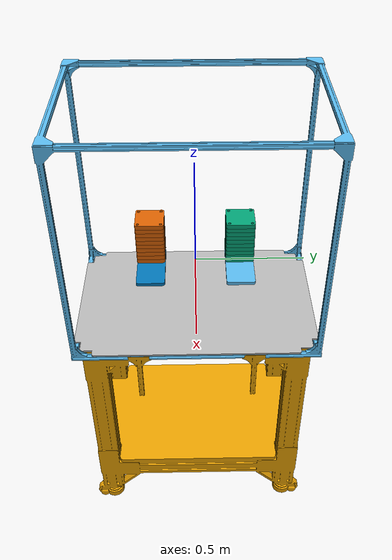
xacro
<?xml version="1.0"?>
<robot xmlns:xacro="http://wiki.ros.org/xacro" name="homecart_bimanual">
  <!-- The Left UR3e robot's ur_base_link is joined to left_arm_base_link -->
  <!-- The Right UR3e robot's ur_base_link is joined to
       right_arm_base_link -->
  <link name="homecart_base_link"/>
  <xacro:property name="arm_mount_cantilever_length" value="0.254"/>
  <xacro:property name="arm_mount_cantilever_height" value="0.015"/>
  <xacro:property name="arm_mount_stack_plate_side" value="0.1275"/>
  <xacro:property name="arm_mount_stack_plate_height" value="0.02"/>
  <xacro:macro name="arm_mount_xacro"
               params="side num_plates *arm_mount_origin">
    <!-- Private, recursive macro to stack visual plate meshes.
         Arguments include "num_plate": the number of plates to stack -->
    <xacro:macro name="arm_mount_visual_plates_xacro"
                params="num_plates">
      <visual>
        <origin xyz="0 0 ${(num_plates-1)*arm_mount_stack_plate_height}"
                rpy="0 0 0"/>
        <geometry>
          <mesh filename="package://drake_models/tri_homecart/assets/homecart_arm_mount_stack.gltf"/>
        </geometry>
      </visual>
      <xacro:if value="${num_plates>1}">
        <xacro:arm_mount_visual_plates_xacro num_plates="${num_plates-1}"/>
      </xacro:if>
    </xacro:macro>
    <link name="${side}arm_mount_cantilever_link">
      <visual>
        <origin xyz="0 0 0.0" rpy="0 0 0"/>
        <geometry>
          <mesh filename="package://drake_models/tri_homecart/assets/homecart_arm_mount_cantilever.gltf"/>
        </geometry>
      </visual>
      <collision>
        <origin xyz="${arm_mount_cantilever_length/4}
                     0
                     ${arm_mount_cantilever_height/2.0}"
                rpy="0 0 0"/>
        <geometry>
          <box size="${arm_mount_cantilever_length}
                     ${arm_mount_stack_plate_side}
                     ${arm_mount_cantilever_height}"/>
        </geometry>
      </collision>
      <inertial>
        <!-- TODO(imcmahon) add valid mass and inertial properties here -->
        <mass value="1.0"/>
        <inertia ixx="100" ixy="0" ixz="0" iyy="100" iyz="0" izz="100"/>
      </inertial>
    </link>
    <joint name="${side}arm_mount_cantilever_joint" type="fixed">
      <xacro:insert_block name="arm_mount_origin"/>
      <parent link="homecart_base_link"/>
      <child link="${side}arm_mount_cantilever_link"/>
    </joint>
    <link name="${side}arm_mount_stack_link">
      <xacro:arm_mount_visual_plates_xacro num_plates="${num_plates}"/>
        <collision>
        <origin xyz="0 0 ${(num_plates*arm_mount_stack_plate_height)/2.0}"
                rpy="0 0 0"/>
        <geometry>
          <box size="${arm_mount_stack_plate_side}
                     ${arm_mount_stack_plate_side}
                     ${num_plates*arm_mount_stack_plate_height}"/>
        </geometry>
      </collision>
      <inertial>
        <!-- TODO(imcmahon) add valid mass and inertial properties here -->
        <mass value="1.0"/>
        <inertia ixx="100" ixy="0" ixz="0" iyy="100" iyz="0" izz="100"/>
      </inertial>
    </link>
    <joint name="${side}arm_mount_stack_joint" type="fixed">
      <origin xyz="0 0 ${arm_mount_cantilever_height}" rpy="0 0 0"/>
      <parent link="${side}arm_mount_cantilever_link"/>
      <child link="${side}arm_mount_stack_link"/>
    </joint>
    <link name="${side}arm_base_link"/>
    <joint name="${side}arm_base_joint" type="fixed">
      <origin xyz="0 0 ${num_plates*0.02}" rpy="0 0 0"/>
      <parent link="${side}arm_mount_stack_link"/>
      <child link="${side}arm_base_link"/>
    </joint>
  </xacro:macro>

  <xacro:property name="arm_mount_pin_delta" value="0.02"/>
  <!-- Valid pin locations (center outward): 0, 1, 2, 3, 4, 5 -->
  <xacro:property name="arm_mount_pin_location" value="5"/>
  <!-- Valid stack values: [0, 10] -->
  <xacro:property name="num_plates" value="10"/>
  <xacro:property name="homecart_base_link_center_x_offset" value="0.2775"/>
  <xacro:property name="homecart_base_link_arm_y_offset" value="0.1"/>
  <xacro:arm_mount_xacro side="left_" num_plates="${num_plates}">
      <origin xyz="0
                   ${homecart_base_link_arm_y_offset+
                     (arm_mount_pin_location*arm_mount_pin_delta)}
                   0"
              rpy="0 0 0"/>
  </xacro:arm_mount_xacro>
  <xacro:arm_mount_xacro side="right_" num_plates="${num_plates}">
      <origin xyz="0
                   ${-homecart_base_link_arm_y_offset-
                     (arm_mount_pin_location*arm_mount_pin_delta)}
                   0"
              rpy="0 0 0"/>
  </xacro:arm_mount_xacro>
  <xacro:property name="homecart_baseplate_width" value="0.6816"/>
  <xacro:property name="homecart_baseplate_length" value="0.9864"/>
  <xacro:property name="homecart_baseplate_height" value="0.0065"/>
  <joint name="homecart_base_link" type="fixed">
    <origin xyz="${homecart_base_link_center_x_offset} 0 0" rpy="0 0 0"/>
    <parent link="homecart_base_link"/>
    <child link="homecart_baseplate_link"/>
  </joint>
  <link name="homecart_baseplate_link">
    <visual>
      <origin xyz="0 0 0.0" rpy="0 0 0"/>
      <geometry>
        <mesh filename="package://drake_models/tri_homecart/assets/homecart_baseplate.gltf"/>
      </geometry>
    </visual>
    <collision>
      <origin xyz="0 0 ${-homecart_baseplate_height/2.0}"
              rpy="0 0 0"/>
      <geometry>
        <box size="${homecart_baseplate_width}
                   ${homecart_baseplate_length}
                   ${homecart_baseplate_height}"/>
      </geometry>
    </collision>
    <inertial>
      <!-- TODO(imcmahon) add valid mass and inertial properties here -->
      <mass value="1.0"/>
      <inertia ixx="100" ixy="0" ixz="0" iyy="100" iyz="0" izz="100"/>
    </inertial>
  </link>
  <xacro:property name="homecart_cart_length" value="0.93"/>
  <xacro:property name="homecart_cart_width" value="0.62"/>
  <xacro:property name="homecart_cart_height" value="1.0275"/>
  <link name="homecart_cart_link">
    <visual>
      <origin xyz="0 0 0.0" rpy="0 0 0"/>
      <geometry>
        <mesh filename="package://drake_models/tri_homecart/assets/homecart_basecart.gltf"/>
      </geometry>
    </visual>
    <collision>
      <!-- The collision shape geometry is specified with respect to its
           geometric center, from the visual origin -->
      <origin xyz="0 0 ${-homecart_cart_height/2.0}" rpy="0 0 0"/>
      <geometry>
        <box size="${homecart_cart_width}
                   ${homecart_cart_length}
                   ${homecart_cart_height}"/>
      </geometry>
    </collision>
    <inertial>
      <!-- TODO(imcmahon) add valid mass and inertial properties here -->
      <mass value="1.0"/>
      <inertia ixx="100" ixy="0" ixz="0" iyy="100" iyz="0" izz="100"/>
    </inertial>
  </link>
  <joint name="homecart_cart_joint" type="fixed">
    <origin xyz="0 0 ${-homecart_baseplate_height}" rpy="0 0 0"/>
    <parent link="homecart_baseplate_link"/>
    <child link="homecart_cart_link"/>
  </joint>
  <xacro:property name="upper_structure_height" value="0.937"/>
  <xacro:property name="upper_structure_length" value="0.9864"/>
  <xacro:property name="upper_structure_width" value="0.6816"/>
  <xacro:property name="upper_structure_beam_side" value="0.023"/>
  <xacro:property name="upper_structure_angle_bracket_radius" value="0.054"/>
  <xacro:property name="base_plate_thickness" value="0.0065"/>
  <xacro:property name="upper_structure_lower_z_origin"
    value="${-upper_structure_height+
             upper_structure_beam_side-
             base_plate_thickness}"/>
  <link name="homecart_upper_structure_link">
    <inertial>
      <!-- TODO(imcmahon) add valid mass and inertial properties here -->
      <mass value="1.0"/>
      <inertia ixx="100" ixy="0" ixz="0" iyy="100" iyz="0" izz="100"/>
    </inertial>
    <visual>
    <origin xyz="0 0 0" rpy="0 0 0"/>
      <geometry>
        <mesh filename="package://drake_models/tri_homecart/assets/homecart_bimanual_upper_structure.gltf"/>
      </geometry>
    </visual>

    <!-- upper angle collision spheres -->
    <collision>
      <origin xyz="${upper_structure_beam_side/2.0}
                   ${upper_structure_beam_side/2.0}
                   ${-upper_structure_beam_side/2.0}"
              rpy="0 0 0"/>
      <geometry>
        <sphere radius="${upper_structure_angle_bracket_radius}"/>
      </geometry>
    </collision>
    <collision>
      <origin xyz="${upper_structure_length-upper_structure_beam_side/2.0}
                   ${upper_structure_beam_side/2.0}
                   ${-upper_structure_beam_side/2.0}"
              rpy="0 0 0"/>
      <geometry>
        <sphere radius="${upper_structure_angle_bracket_radius}"/>
      </geometry>
    </collision>
    <collision>
      <origin xyz="${upper_structure_length-upper_structure_beam_side/2.0}
                   ${upper_structure_width-upper_structure_beam_side/2.0}
                   ${-upper_structure_beam_side/2.0}"
              rpy="0 0 0"/>
      <geometry>
        <sphere radius="${upper_structure_angle_bracket_radius}"/>
      </geometry>
    </collision>
    <collision>
      <origin xyz="${upper_structure_beam_side/2.0}
                   ${upper_structure_width-upper_structure_beam_side/2.0}
                   ${-upper_structure_beam_side/2.0}"
              rpy="0 0 0"/>
      <geometry>
        <sphere radius="${upper_structure_angle_bracket_radius}"/>
      </geometry>
    </collision>
    <!-- lower angle collision spheres -->
    <collision>
      <origin xyz="${upper_structure_length-upper_structure_beam_side/2.0}
                   ${upper_structure_width-upper_structure_beam_side/2.0}
                   ${upper_structure_lower_z_origin}"
              rpy="0 0 0"/>
      <geometry>
        <sphere radius="${upper_structure_angle_bracket_radius}"/>
      </geometry>
    </collision>
    <collision>
      <origin xyz="${upper_structure_length-upper_structure_beam_side/2.0}
                   ${upper_structure_beam_side/2.0}
                   ${upper_structure_lower_z_origin}"
              rpy="0 0 0"/>
      <geometry>
        <sphere radius="${upper_structure_angle_bracket_radius}"/>
      </geometry>
    </collision>
    <collision>
      <origin xyz="${upper_structure_beam_side/2.0}
                   ${upper_structure_width-upper_structure_beam_side/2.0}
                   ${upper_structure_lower_z_origin}"
              rpy="0 0 0"/>
      <geometry>
        <sphere radius="${upper_structure_angle_bracket_radius}"/>
      </geometry>
    </collision>
    <collision>
      <origin xyz="${upper_structure_beam_side/2.0}
                   ${upper_structure_beam_side/2.0}
                   ${upper_structure_lower_z_origin}"
              rpy="0 0 0"/>
      <geometry>
        <sphere radius="${upper_structure_angle_bracket_radius}"/>
      </geometry>
    </collision>
    <!-- Macro for building horizontal, square collision bars.
         Arguments include "z_origin": the mounting point along the
                                       parent frame's Z axis -->
    <xacro:macro name="upper_structure_horizontal_collision_bars"
                 params="z_origin">
      <collision>
        <origin xyz="${upper_structure_length/2.0}
                     ${upper_structure_beam_side/2.0}
                     ${z_origin}"
                rpy="0 0 0"/>
        <geometry>
          <box size="${upper_structure_length}
                     ${upper_structure_beam_side}
                     ${upper_structure_beam_side}"/>
        </geometry>
      </collision>
      <collision>
        <origin xyz="${upper_structure_beam_side/2.0}
                     ${upper_structure_width/2.0}
                     ${z_origin}"
                rpy="0 0 0"/>
        <geometry>
          <box size="${upper_structure_beam_side}
                     ${upper_structure_width}
                     ${upper_structure_beam_side}"/>
        </geometry>
      </collision>
      <collision>
        <origin xyz="${upper_structure_length/2.0}
                     ${upper_structure_width-upper_structure_beam_side/2.0}
                     ${z_origin}"
                rpy="0 0 0"/>
        <geometry>
          <box size="${upper_structure_length}
                     ${upper_structure_beam_side}
                     ${upper_structure_beam_side}"/>
        </geometry>
      </collision>
      <collision>
        <origin xyz="${upper_structure_length-upper_structure_beam_side/2.0}
                     ${upper_structure_width/2.0}
                     ${z_origin}"
                rpy="0 0 0"/>
        <geometry>
          <box size="${upper_structure_beam_side}
                     ${upper_structure_width}
                     ${upper_structure_beam_side}"/>
        </geometry>
      </collision>
    </xacro:macro>
    <!-- Upper horizontal aluminum beam collision boxes -->
    <xacro:upper_structure_horizontal_collision_bars
      z_origin="${-upper_structure_beam_side/2.0}" />
    <!-- Lower horizontal aluminum beam collision boxes -->
    <xacro:upper_structure_horizontal_collision_bars
      z_origin="${upper_structure_lower_z_origin}" />
    <!-- Vertical aluminum beam collision boxes -->
    <collision>
      <origin xyz="${upper_structure_beam_side/2.0}
                   ${upper_structure_width-upper_structure_beam_side/2.0}
                   ${-upper_structure_height/2.0}"
              rpy="0 0 0"/>
      <geometry>
        <box size="${upper_structure_beam_side}
                   ${upper_structure_beam_side}
                   ${upper_structure_height}"/>
      </geometry>
    </collision>
    <collision>
      <origin xyz="${upper_structure_beam_side/2.0}
                   ${upper_structure_beam_side/2.0}
                   ${-upper_structure_height/2.0}"
              rpy="0 0 0"/>
      <geometry>
        <box size="${upper_structure_beam_side}
                   ${upper_structure_beam_side}
                   ${upper_structure_height}"/>
      </geometry>
    </collision>
    <collision>
      <origin xyz="${upper_structure_length-upper_structure_beam_side/2.0}
                   ${upper_structure_beam_side/2.0}
                   ${-upper_structure_height/2.0}"
              rpy="0 0 0"/>
      <geometry>
        <box size="${upper_structure_beam_side}
                   ${upper_structure_beam_side}
                   ${upper_structure_height}"/>
      </geometry>
    </collision>
    <collision>
      <origin xyz="${upper_structure_length-upper_structure_beam_side/2.0}
                   ${upper_structure_width-upper_structure_beam_side/2.0}
                   ${-upper_structure_height/2.0}"
              rpy="0 0 0"/>
      <geometry>
        <box size="${upper_structure_beam_side}
                   ${upper_structure_beam_side}
                   ${upper_structure_height}"/>
      </geometry>
    </collision>
  </link>
  <joint name="homecart_upper_structure_joint" type="fixed">
    <origin xyz="${homecart_base_link_center_x_offset-
                   upper_structure_width/2.0}
                 ${upper_structure_length/2.0}
                 ${upper_structure_height-
                   upper_structure_beam_side-
                   base_plate_thickness}"
            rpy="0 0 ${3*pi/2.0}"/>
    <parent link="homecart_base_link"/>
    <child link="homecart_upper_structure_link"/>
  </joint>
</robot>
